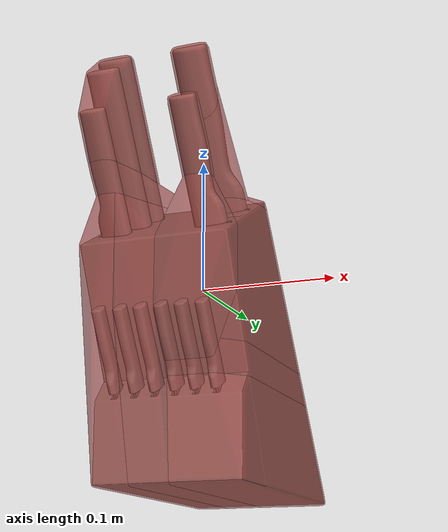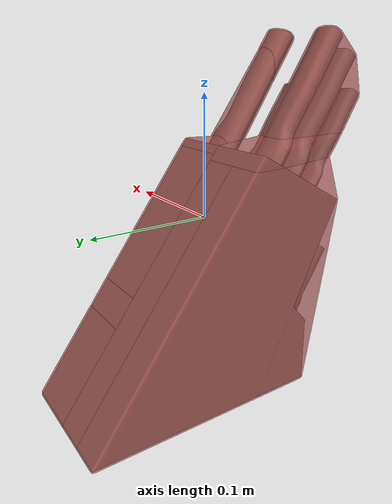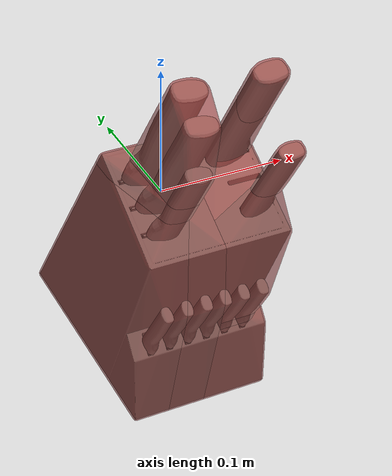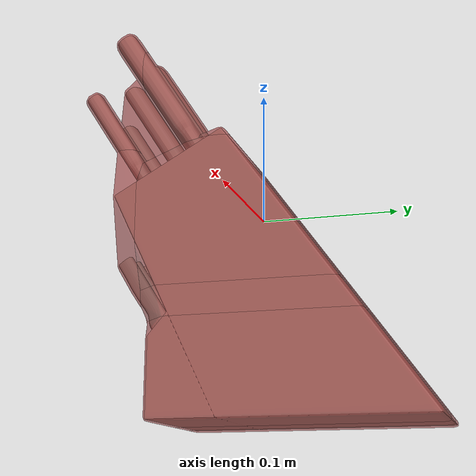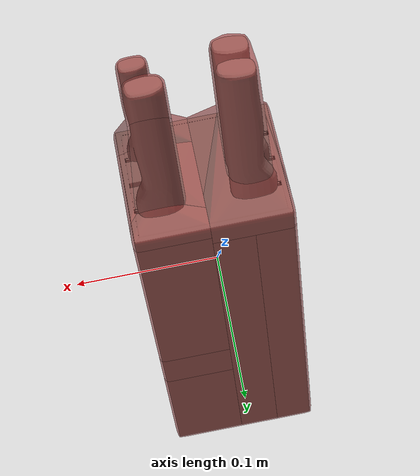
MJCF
<mujoco model="model">
  <option timestep="0.002" gravity="0.0 0.0 -9.81"/>
  <compiler angle="radian"/>
  <asset>
    <mesh file="visual/KnifeBlock008.obj" name="KnifeBlock008_vis"/>
    <mesh file="visual/Prop.obj" name="KnifeBlock008_Prop_vis"/>
    <texture file="visual/T_BC001.png" name="KnifeBlock008_material" type="2d"/>
    <material name="KnifeBlock008_material" rgba="1 1 1 1.0" texture="KnifeBlock008_material" shininess="0.5" specular="0.3103448502657381"/>
    <texture file="visual/T_BC001.png" name="KnifeBlock008_Prop_material" type="2d"/>
    <material name="KnifeBlock008_Prop_material" rgba="1 1 1 1.0" texture="KnifeBlock008_Prop_material" shininess="0.1" specular="2"/>
    <mesh file="collision/collision_mesh_collision_0.obj" name="KnifeBlock008_collision_mesh_0"/>
    <mesh file="collision/collision_mesh_collision_1.obj" name="KnifeBlock008_collision_mesh_1"/>
    <mesh file="collision/collision_mesh_collision_2.obj" name="KnifeBlock008_collision_mesh_2"/>
    <mesh file="collision/collision_mesh_collision_3.obj" name="KnifeBlock008_collision_mesh_3"/>
    <mesh file="collision/collision_mesh_collision_4.obj" name="KnifeBlock008_collision_mesh_4"/>
    <mesh file="collision/collision_mesh_collision_5.obj" name="KnifeBlock008_collision_mesh_5"/>
    <mesh file="collision/collision_mesh_collision_6.obj" name="KnifeBlock008_collision_mesh_6"/>
    <mesh file="collision/collision_mesh_collision_7.obj" name="KnifeBlock008_collision_mesh_7"/>
    <mesh file="collision/collision_mesh_collision_8.obj" name="KnifeBlock008_collision_mesh_8"/>
    <mesh file="collision/collision_mesh_collision_9.obj" name="KnifeBlock008_collision_mesh_9"/>
    <mesh file="collision/collision_mesh_collision_10.obj" name="KnifeBlock008_collision_mesh_10"/>
    <mesh file="collision/collision_mesh_collision_11.obj" name="KnifeBlock008_collision_mesh_11"/>
  </asset>
  <default>
    <default class="visual">
      <geom conaffinity="0" contype="0" group="1" type="mesh"/>
    </default>
    <default class="collision">
      <geom group="0" rgba="0.5 0 0 0.5" density="1000.0"/>
    </default>
    <default class="spawn">
      <geom group="0" rgba="1 1 1 0.5" contype="0" conaffinity="0"/>
      <site group="0" rgba="1 1 1 0.5"/>
    </default>
    <default class="region">
      <geom group="1" conaffinity="0" contype="0" rgba="0 1 0 0" mass="0"/>
    </default>
  </default>
  <worldbody>
    <body>
      <body name="object">
        <geom mesh="KnifeBlock008_vis" type="mesh" solimp="0.998 0.998 0.001" solref="0.001 1" friction="0.95 0.3 0.1" class="visual" material="KnifeBlock008_material"/>
        <body name="KnifeBlock008_Prop">
          <geom mesh="KnifeBlock008_Prop_vis" type="mesh" solimp="0.998 0.998 0.001" solref="0.001 1" friction="0.95 0.3 0.1" class="visual" material="KnifeBlock008_Prop_material"/>
        </body>
        <geom class="region" name="reg_bbox" type="box" pos="0.0 -9.53550000000053e-05 -0.0001470499999999958" size="0.05521916 0.13158679499999998 0.14986311000000002"/>
        <geom mesh="KnifeBlock008_collision_mesh_0" type="mesh" class="collision"/>
        <geom mesh="KnifeBlock008_collision_mesh_1" type="mesh" class="collision"/>
        <geom mesh="KnifeBlock008_collision_mesh_2" type="mesh" class="collision"/>
        <geom mesh="KnifeBlock008_collision_mesh_3" type="mesh" class="collision"/>
        <geom mesh="KnifeBlock008_collision_mesh_4" type="mesh" class="collision"/>
        <geom mesh="KnifeBlock008_collision_mesh_5" type="mesh" class="collision"/>
        <geom mesh="KnifeBlock008_collision_mesh_6" type="mesh" class="collision"/>
        <geom mesh="KnifeBlock008_collision_mesh_7" type="mesh" class="collision"/>
        <geom mesh="KnifeBlock008_collision_mesh_8" type="mesh" class="collision"/>
        <geom mesh="KnifeBlock008_collision_mesh_9" type="mesh" class="collision"/>
        <geom mesh="KnifeBlock008_collision_mesh_10" type="mesh" class="collision"/>
        <geom mesh="KnifeBlock008_collision_mesh_11" type="mesh" class="collision"/>
      </body>
    </body>
  </worldbody>
  <actuator/>
</mujoco>
